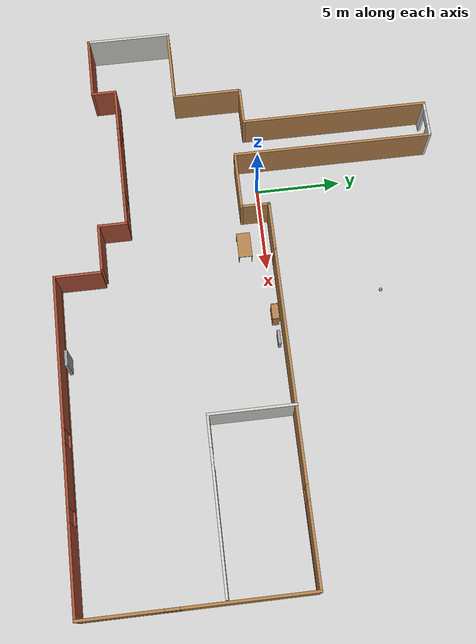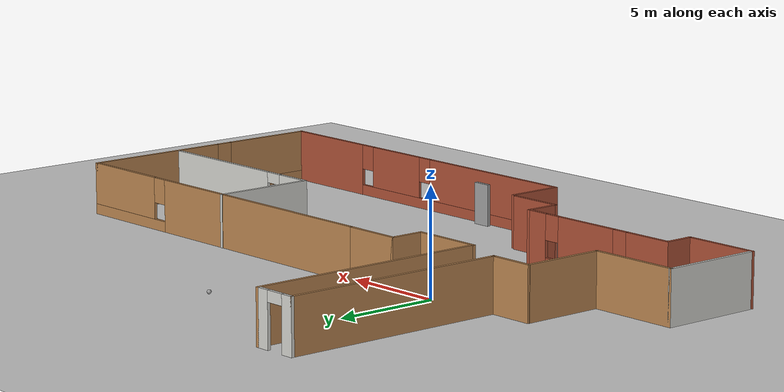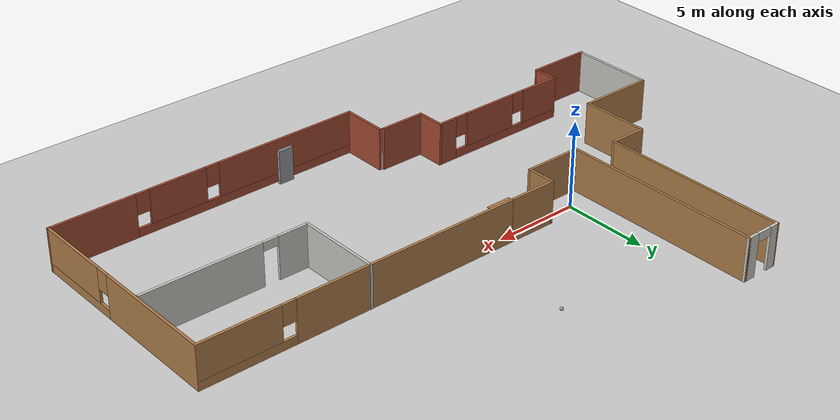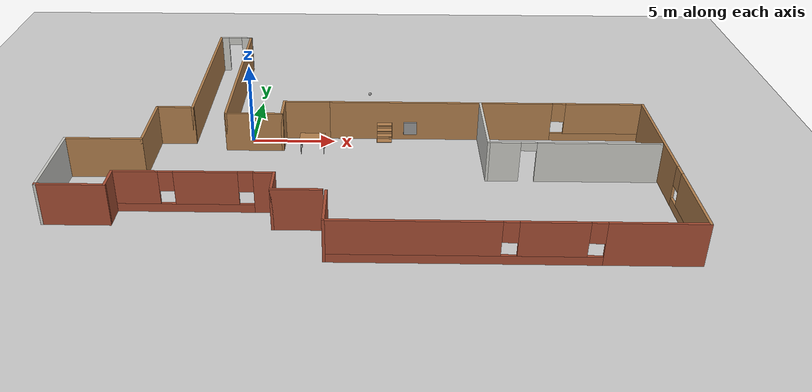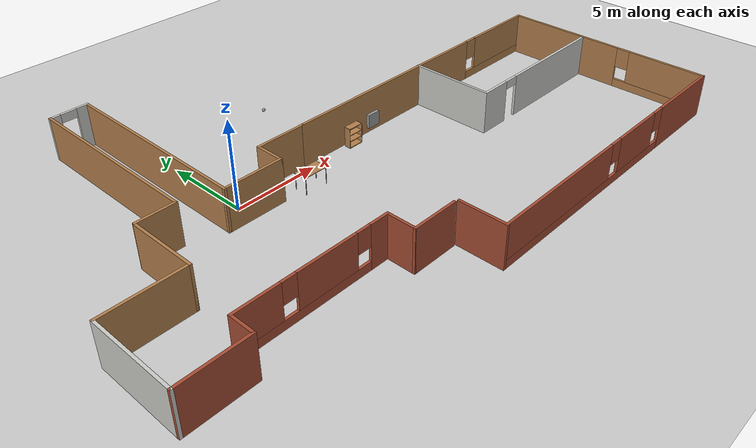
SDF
<sdf version="1.6">
 <world name="default">
  <model name="ground_plane">
   <static>1</static>
   <link name="link">
    <collision name="collision">
     <geometry><plane><normal>0 0 1</normal><size>100 100</size></plane></geometry>
     <surface><friction><ode><mu>100</mu><mu2>50</mu2></ode></friction></surface>
    </collision>
    <visual name="visual">
     <cast_shadows>0</cast_shadows>
     <geometry><plane><normal>0 0 1</normal><size>100 100</size></plane></geometry>
     <material>
      <script><uri>file://media/materials/scripts/gazebo.material</uri><name>Gazebo/Grey</name></script>
     </material>
    </visual>
   </link>
  </model>
  <model name="Building">
   <pose>6.82492 -0.8422 0 0 -0 0</pose>
   <link name="Door_2">
    <collision name="Door_2_Collision">
     <geometry><box><size>0.9 0.17 2</size></box></geometry>
     <pose>0 0 1 0 -0 0</pose>
    </collision>
    <visual name="Door_2_Visual">
     <pose>0 0 1 0 -0 0</pose>
     <geometry><box><size>0.9 0.17 2</size></box></geometry>
     <material>
      <script><uri>file://media/materials/scripts/gazebo.material</uri><name>Gazebo/Grey</name></script>
     </material>
    </visual>
    <pose>2.85427 -10.9833 0 0 -0 0</pose>
   </link>
   <link name="Wall_22">
    <collision name="Wall_22_Collision">
     <geometry><box><size>2.75 0.15 2.5</size></box></geometry>
     <pose>0 0 1.25 0 -0 0</pose>
    </collision>
    <visual name="Wall_22_Visual">
     <pose>0 0 1.25 0 -0 0</pose>
     <geometry><box><size>2.75 0.15 2.5</size></box></geometry>
     <material>
      <script><uri>file://media/materials/scripts/gazebo.material</uri><name>Gazebo/Bricks</name></script>
      <ambient>1 1 1 1</ambient>
     </material>
     <meta><layer>0</layer></meta>
    </visual>
    <pose>-3.31689 -8.59353 0 0 -0 0</pose>
   </link>
   <link name="Wall_24">
    <collision name="Wall_24_Collision">
     <geometry><box><size>1.75 0.15 2.5</size></box></geometry>
     <pose>0 0 1.25 0 -0 0</pose>
    </collision>
    <visual name="Wall_24_Visual">
     <pose>0 0 1.25 0 -0 0</pose>
     <geometry><box><size>1.75 0.15 2.5</size></box></geometry>
     <material>
      <script><uri>file://media/materials/scripts/gazebo.material</uri><name>Gazebo/Bricks</name></script>
      <ambient>1 1 1 1</ambient>
     </material>
     <meta><layer>0</layer></meta>
    </visual>
    <pose>-4.61688 -7.79353 0 0 -0 1.5708</pose>
   </link>
   <link name="Wall_25">
    <pose>-8.91689 -6.99353 0 0 -0 3.14159</pose>
    <visual name="Wall_25_Visual_0">
     <pose>-3.77887 0 1.25 0 -0 0</pose>
     <geometry><box><size>1.19226 0.15 2.5</size></box></geometry>
     <material>
      <script><uri>file://media/materials/scripts/gazebo.material</uri><name>Gazebo/Bricks</name></script>
      <ambient>1 1 1 1</ambient>
     </material>
     <meta><layer>0</layer></meta>
    </visual>
    <collision name="Wall_25_Collision_0">
     <geometry><box><size>1.19226 0.15 2.5</size></box></geometry>
     <pose>-3.77887 0 1.25 0 -0 0</pose>
    </collision>
    <visual name="Wall_25_Visual_1">
     <pose>0.596132 0 0.25 0 -0 0</pose>
     <geometry><box><size>7.55774 0.15 0.5</size></box></geometry>
     <material>
      <script><uri>file://media/materials/scripts/gazebo.material</uri><name>Gazebo/Bricks</name></script>
      <ambient>1 1 1 1</ambient>
     </material>
     <meta><layer>0</layer></meta>
    </visual>
    <collision name="Wall_25_Collision_1">
     <geometry><box><size>7.55774 0.15 0.5</size></box></geometry>
     <pose>0.596132 0 0.25 0 -0 0</pose>
    </collision>
    <visual name="Wall_25_Visual_2">
     <pose>-0.669386 0 1.5 0 -0 0</pose>
     <geometry><box><size>3.4267 0.15 2</size></box></geometry>
     <material>
      <script><uri>file://media/materials/scripts/gazebo.material</uri><name>Gazebo/Bricks</name></script>
      <ambient>1 1 1 1</ambient>
     </material>
     <meta><layer>0</layer></meta>
    </visual>
    <collision name="Wall_25_Collision_2">
     <geometry><box><size>3.4267 0.15 2</size></box></geometry>
     <pose>-0.669386 0 1.5 0 -0 0</pose>
    </collision>
    <visual name="Wall_25_Visual_3">
     <pose>3.10948 0 1.5 0 -0 0</pose>
     <geometry><box><size>2.53104 0.15 2</size></box></geometry>
     <material>
      <script><uri>file://media/materials/scripts/gazebo.material</uri><name>Gazebo/Bricks</name></script>
      <ambient>1 1 1 1</ambient>
     </material>
     <meta><layer>0</layer></meta>
    </visual>
    <collision name="Wall_25_Collision_3">
     <geometry><box><size>2.53104 0.15 2</size></box></geometry>
     <pose>3.10948 0 1.5 0 -0 0</pose>
    </collision>
    <visual name="Wall_25_Visual_4">
     <pose>-2.78274 0 1.9 0 -0 0</pose>
     <geometry><box><size>0.8 0.15 1.2</size></box></geometry>
     <material>
      <script><uri>file://media/materials/scripts/gazebo.material</uri><name>Gazebo/Bricks</name></script>
      <ambient>1 1 1 1</ambient>
     </material>
     <meta><layer>0</layer></meta>
    </visual>
    <collision name="Wall_25_Collision_4">
     <geometry><box><size>0.8 0.15 1.2</size></box></geometry>
     <pose>-2.78274 0 1.9 0 -0 0</pose>
    </collision>
    <visual name="Wall_25_Visual_5">
     <pose>1.44396 0 1.9 0 -0 0</pose>
     <geometry><box><size>0.8 0.15 1.2</size></box></geometry>
     <material>
      <script><uri>file://media/materials/scripts/gazebo.material</uri><name>Gazebo/Bricks</name></script>
      <ambient>1 1 1 1</ambient>
     </material>
     <meta><layer>0</layer></meta>
    </visual>
    <collision name="Wall_25_Collision_5">
     <geometry><box><size>0.8 0.15 1.2</size></box></geometry>
     <pose>1.44396 0 1.9 0 -0 0</pose>
    </collision>
   </link>
   <link name="Wall_26">
    <collision name="Wall_26_Collision">
     <geometry><box><size>1.5 0.15 2.5</size></box></geometry>
     <pose>0 0 1.25 0 -0 0</pose>
    </collision>
    <visual name="Wall_26_Visual">
     <pose>0 0 1.25 0 -0 0</pose>
     <geometry><box><size>1.5 0.15 2.5</size></box></geometry>
     <material>
      <script><uri>file://media/materials/scripts/gazebo.material</uri><name>Gazebo/Bricks</name></script>
      <ambient>1 1 1 1</ambient>
     </material>
     <meta><layer>0</layer></meta>
    </visual>
    <pose>-13.2169 -7.66853 0 0 0 -1.5708</pose>
   </link>
   <link name="Wall_27">
    <collision name="Wall_27_Collision">
     <geometry><box><size>3.75 0.15 2.5</size></box></geometry>
     <pose>0 0 1.25 0 -0 0</pose>
    </collision>
    <visual name="Wall_27_Visual">
     <pose>0 0 1.25 0 -0 0</pose>
     <geometry><box><size>3.75 0.15 2.5</size></box></geometry>
     <material>
      <script><uri>file://media/materials/scripts/gazebo.material</uri><name>Gazebo/Bricks</name></script>
      <ambient>1 1 1 1</ambient>
     </material>
     <meta><layer>0</layer></meta>
    </visual>
    <pose>-15.0169 -8.34353 0 0 -0 3.14159</pose>
   </link>
   <link name="Wall_28">
    <collision name="Wall_28_Collision">
     <geometry><box><size>5 0.15 2.5</size></box></geometry>
     <pose>0 0 1.25 0 -0 0</pose>
    </collision>
    <visual name="Wall_28_Visual">
     <pose>0 0 1.25 0 -0 0</pose>
     <geometry><box><size>5 0.15 2.5</size></box></geometry>
     <material>
      <script><uri>file://media/materials/scripts/gazebo.material</uri><name>Gazebo/CeilingTiled</name></script>
      <ambient>1 1 1 1</ambient>
     </material>
     <meta><layer>0</layer></meta>
    </visual>
    <pose>-16.8169 -5.91853 0 0 -0 1.5708</pose>
   </link>
   <link name="Wall_29">
    <collision name="Wall_29_Collision">
     <geometry><box><size>4.5 0.15 2.5</size></box></geometry>
     <pose>0 0 1.25 0 -0 0</pose>
    </collision>
    <visual name="Wall_29_Visual">
     <pose>0 0 1.25 0 -0 0</pose>
     <geometry><box><size>4.5 0.15 2.5</size></box></geometry>
     <material>
      <script><uri>file://media/materials/scripts/gazebo.material</uri><name>Gazebo/Wood</name></script>
      <ambient>1 1 1 1</ambient>
     </material>
     <meta><layer>0</layer></meta>
    </visual>
    <pose>-14.6419 -3.49353 0 0 -0 0</pose>
   </link>
   <link name="Wall_30">
    <collision name="Wall_30_Collision">
     <geometry><box><size>4 0.15 2.5</size></box></geometry>
     <pose>0 0 1.25 0 -0 0</pose>
    </collision>
    <visual name="Wall_30_Visual">
     <pose>0 0 1.25 0 -0 0</pose>
     <geometry><box><size>4 0.15 2.5</size></box></geometry>
     <material>
      <script><uri>file://media/materials/scripts/gazebo.material</uri><name>Gazebo/Wood</name></script>
      <ambient>1 1 1 1</ambient>
     </material>
     <meta><layer>0</layer></meta>
    </visual>
    <pose>-12.4669 -1.56853 0 0 -0 1.5708</pose>
   </link>
   <link name="Wall_33">
    <collision name="Wall_33_Collision">
     <geometry><box><size>11.75 0.15 2.5</size></box></geometry>
     <pose>0 0 1.25 0 -0 0</pose>
    </collision>
    <visual name="Wall_33_Visual">
     <pose>0 0 1.25 0 -0 0</pose>
     <geometry><box><size>11.75 0.15 2.5</size></box></geometry>
     <material>
      <script><uri>file://media/materials/scripts/gazebo.material</uri><name>Gazebo/Wood</name></script>
      <ambient>1 1 1 1</ambient>
     </material>
     <meta><layer>0</layer></meta>
    </visual>
    <pose>-8.23311 5.5 0 0 -0 1.5708</pose>
   </link>
   <link name="Wall_34">
    <pose>-9.28312 11.3 0 0 -0 3.14159</pose>
    <visual name="Wall_34_Visual_0">
     <pose>-0.756908 0 1.25 0 -0 0</pose>
     <geometry><box><size>0.736185 0.15 2.5</size></box></geometry>
     <material>
      <script><uri>file://media/materials/scripts/gazebo.material</uri><name>Gazebo/CeilingTiled</name></script>
      <ambient>1 1 1 1</ambient>
     </material>
     <meta><layer>0</layer></meta>
    </visual>
    <collision name="Wall_34_Collision_0">
     <geometry><box><size>0.736185 0.15 2.5</size></box></geometry>
     <pose>-0.756908 0 1.25 0 -0 0</pose>
    </collision>
    <visual name="Wall_34_Visual_1">
     <pose>0.818092 0 1.25 0 -0 0</pose>
     <geometry><box><size>0.613815 0.15 2.5</size></box></geometry>
     <material>
      <script><uri>file://media/materials/scripts/gazebo.material</uri><name>Gazebo/CeilingTiled</name></script>
      <ambient>1 1 1 1</ambient>
     </material>
     <meta><layer>0</layer></meta>
    </visual>
    <collision name="Wall_34_Collision_1">
     <geometry><box><size>0.613815 0.15 2.5</size></box></geometry>
     <pose>0.818092 0 1.25 0 -0 0</pose>
    </collision>
    <visual name="Wall_34_Visual_2">
     <pose>0.061185 0 2.25 0 -0 0</pose>
     <geometry><box><size>0.9 0.15 0.5</size></box></geometry>
     <material>
      <script><uri>file://media/materials/scripts/gazebo.material</uri><name>Gazebo/CeilingTiled</name></script>
      <ambient>1 1 1 1</ambient>
     </material>
     <meta><layer>0</layer></meta>
    </visual>
    <collision name="Wall_34_Collision_2">
     <geometry><box><size>0.9 0.15 0.5</size></box></geometry>
     <pose>0.061185 0 2.25 0 -0 0</pose>
    </collision>
   </link>
   <link name="Wall_35">
    <collision name="Wall_35_Collision">
     <geometry><box><size>11 0.15 2.5</size></box></geometry>
     <pose>0 0 1.25 0 -0 0</pose>
    </collision>
    <visual name="Wall_35_Visual">
     <pose>0 0 1.25 0 -0 0</pose>
     <geometry><box><size>11 0.15 2.5</size></box></geometry>
     <material>
      <script><uri>file://media/materials/scripts/gazebo.material</uri><name>Gazebo/Wood</name></script>
      <ambient>1 1 1 1</ambient>
     </material>
     <meta><layer>0</layer></meta>
    </visual>
    <pose>-10.3331 5.875 0 0 0 -1.5708</pose>
   </link>
   <link name="Wall_36">
    <collision name="Wall_36_Collision">
     <geometry><box><size>2.25 0.15 2.5</size></box></geometry>
     <pose>0 0 1.25 0 -0 0</pose>
    </collision>
    <visual name="Wall_36_Visual">
     <pose>0 0 1.25 0 -0 0</pose>
     <geometry><box><size>2.25 0.15 2.5</size></box></geometry>
     <material>
      <script><uri>file://media/materials/scripts/gazebo.material</uri><name>Gazebo/Wood</name></script>
      <ambient>1 1 1 1</ambient>
     </material>
     <meta><layer>0</layer></meta>
    </visual>
    <pose>-11.3831 0.45 0 0 -0 3.14159</pose>
   </link>
   <link name="Wall_41">
    <pose>7.39189 1.3 0 0 -0 0</pose>
    <visual name="Wall_41_Visual_0">
     <pose>-2.75135 0 1.25 0 -0 0</pose>
     <geometry><box><size>13.4973 0.15 2.5</size></box></geometry>
     <material>
      <script><uri>file://media/materials/scripts/gazebo.material</uri><name>Gazebo/Wood</name></script>
      <ambient>1 1 1 1</ambient>
     </material>
     <meta><layer>0</layer></meta>
    </visual>
    <collision name="Wall_41_Collision_0">
     <geometry><box><size>13.4973 0.15 2.5</size></box></geometry>
     <pose>-2.75135 0 1.25 0 -0 0</pose>
    </collision>
    <visual name="Wall_41_Visual_1">
     <pose>6.74865 0 0.25 0 -0 0</pose>
     <geometry><box><size>5.5027 0.15 0.5</size></box></geometry>
     <material>
      <script><uri>file://media/materials/scripts/gazebo.material</uri><name>Gazebo/Wood</name></script>
      <ambient>1 1 1 1</ambient>
     </material>
     <meta><layer>0</layer></meta>
    </visual>
    <collision name="Wall_41_Collision_1">
     <geometry><box><size>5.5027 0.15 0.5</size></box></geometry>
     <pose>6.74865 0 0.25 0 -0 0</pose>
    </collision>
    <visual name="Wall_41_Visual_2">
     <pose>7.14865 0 1.5 0 -0 0</pose>
     <geometry><box><size>4.7027 0.15 2</size></box></geometry>
     <material>
      <script><uri>file://media/materials/scripts/gazebo.material</uri><name>Gazebo/Wood</name></script>
      <ambient>1 1 1 1</ambient>
     </material>
     <meta><layer>0</layer></meta>
    </visual>
    <collision name="Wall_41_Collision_2">
     <geometry><box><size>4.7027 0.15 2</size></box></geometry>
     <pose>7.14865 0 1.5 0 -0 0</pose>
    </collision>
    <visual name="Wall_41_Visual_3">
     <pose>4.3973 0 1.9 0 -0 0</pose>
     <geometry><box><size>0.8 0.15 1.2</size></box></geometry>
     <material>
      <script><uri>file://media/materials/scripts/gazebo.material</uri><name>Gazebo/Wood</name></script>
      <ambient>1 1 1 1</ambient>
     </material>
     <meta><layer>0</layer></meta>
    </visual>
    <collision name="Wall_41_Collision_3">
     <geometry><box><size>0.8 0.15 1.2</size></box></geometry>
     <pose>4.3973 0 1.9 0 -0 0</pose>
    </collision>
   </link>
   <link name="Wall_42">
    <pose>16.8169 -5 0 0 0 -1.5708</pose>
    <visual name="Wall_42_Visual_0">
     <pose>-2.72318 0 1.25 0 -0 0</pose>
     <geometry><box><size>7.30363 0.15 2.5</size></box></geometry>
     <material>
      <script><uri>file://media/materials/scripts/gazebo.material</uri><name>Gazebo/Wood</name></script>
      <ambient>1 1 1 1</ambient>
     </material>
     <meta><layer>0</layer></meta>
    </visual>
    <collision name="Wall_42_Collision_0">
     <geometry><box><size>7.30363 0.15 2.5</size></box></geometry>
     <pose>-2.72318 0 1.25 0 -0 0</pose>
    </collision>
    <visual name="Wall_42_Visual_1">
     <pose>3.65182 0 0.25 0 -0 0</pose>
     <geometry><box><size>5.44637 0.15 0.5</size></box></geometry>
     <material>
      <script><uri>file://media/materials/scripts/gazebo.material</uri><name>Gazebo/Wood</name></script>
      <ambient>1 1 1 1</ambient>
     </material>
     <meta><layer>0</layer></meta>
    </visual>
    <collision name="Wall_42_Collision_1">
     <geometry><box><size>5.44637 0.15 0.5</size></box></geometry>
     <pose>3.65182 0 0.25 0 -0 0</pose>
    </collision>
    <visual name="Wall_42_Visual_2">
     <pose>4.05182 0 1.5 0 -0 0</pose>
     <geometry><box><size>4.64637 0.15 2</size></box></geometry>
     <material>
      <script><uri>file://media/materials/scripts/gazebo.material</uri><name>Gazebo/Wood</name></script>
      <ambient>1 1 1 1</ambient>
     </material>
     <meta><layer>0</layer></meta>
    </visual>
    <collision name="Wall_42_Collision_2">
     <geometry><box><size>4.64637 0.15 2</size></box></geometry>
     <pose>4.05182 0 1.5 0 -0 0</pose>
    </collision>
    <visual name="Wall_42_Visual_3">
     <pose>1.32863 0 1.9 0 -0 0</pose>
     <geometry><box><size>0.8 0.15 1.2</size></box></geometry>
     <material>
      <script><uri>file://media/materials/scripts/gazebo.material</uri><name>Gazebo/Wood</name></script>
      <ambient>1 1 1 1</ambient>
     </material>
     <meta><layer>0</layer></meta>
    </visual>
    <collision name="Wall_42_Collision_3">
     <geometry><box><size>0.8 0.15 1.2</size></box></geometry>
     <pose>1.32863 0 1.9 0 -0 0</pose>
    </collision>
   </link>
   <link name="Wall_43">
    <pose>7.51689 -11.3 0 0 -0 3.14159</pose>
    <visual name="Wall_43_Visual_0">
     <pose>-6.8899 0 1.25 0 -0 0</pose>
     <geometry><box><size>4.97021 0.15 2.5</size></box></geometry>
     <material>
      <script><uri>file://media/materials/scripts/gazebo.material</uri><name>Gazebo/Bricks</name></script>
      <ambient>1 1 1 1</ambient>
     </material>
     <meta><layer>0</layer></meta>
    </visual>
    <collision name="Wall_43_Collision_0">
     <geometry><box><size>4.97021 0.15 2.5</size></box></geometry>
     <pose>-6.8899 0 1.25 0 -0 0</pose>
    </collision>
    <visual name="Wall_43_Visual_1">
     <pose>2.4851 0 0.25 0 -0 0</pose>
     <geometry><box><size>13.7798 0.15 0.5</size></box></geometry>
     <material>
      <script><uri>file://media/materials/scripts/gazebo.material</uri><name>Gazebo/Bricks</name></script>
      <ambient>1 1 1 1</ambient>
     </material>
     <meta><layer>0</layer></meta>
    </visual>
    <collision name="Wall_43_Collision_1">
     <geometry><box><size>13.7798 0.15 0.5</size></box></geometry>
     <pose>2.4851 0 0.25 0 -0 0</pose>
    </collision>
    <visual name="Wall_43_Visual_2">
     <pose>-1.89144 0 1.5 0 -0 0</pose>
     <geometry><box><size>3.4267 0.15 2</size></box></geometry>
     <material>
      <script><uri>file://media/materials/scripts/gazebo.material</uri><name>Gazebo/Bricks</name></script>
      <ambient>1 1 1 1</ambient>
     </material>
     <meta><layer>0</layer></meta>
    </visual>
    <collision name="Wall_43_Collision_2">
     <geometry><box><size>3.4267 0.15 2</size></box></geometry>
     <pose>-1.89144 0 1.5 0 -0 0</pose>
    </collision>
    <visual name="Wall_43_Visual_3">
     <pose>4.99845 0 1.5 0 -0 0</pose>
     <geometry><box><size>8.75309 0.15 2</size></box></geometry>
     <material>
      <script><uri>file://media/materials/scripts/gazebo.material</uri><name>Gazebo/Bricks</name></script>
      <ambient>1 1 1 1</ambient>
     </material>
     <meta><layer>0</layer></meta>
    </visual>
    <collision name="Wall_43_Collision_3">
     <geometry><box><size>8.75309 0.15 2</size></box></geometry>
     <pose>4.99845 0 1.5 0 -0 0</pose>
    </collision>
    <visual name="Wall_43_Visual_4">
     <pose>-4.00479 0 1.9 0 -0 0</pose>
     <geometry><box><size>0.8 0.15 1.2</size></box></geometry>
     <material>
      <script><uri>file://media/materials/scripts/gazebo.material</uri><name>Gazebo/Bricks</name></script>
      <ambient>1 1 1 1</ambient>
     </material>
     <meta><layer>0</layer></meta>
    </visual>
    <collision name="Wall_43_Collision_4">
     <geometry><box><size>0.8 0.15 1.2</size></box></geometry>
     <pose>-4.00479 0 1.9 0 -0 0</pose>
    </collision>
    <visual name="Wall_43_Visual_5">
     <pose>0.221907 0 1.9 0 -0 0</pose>
     <geometry><box><size>0.8 0.15 1.2</size></box></geometry>
     <material>
      <script><uri>file://media/materials/scripts/gazebo.material</uri><name>Gazebo/Bricks</name></script>
      <ambient>1 1 1 1</ambient>
     </material>
     <meta><layer>0</layer></meta>
    </visual>
    <collision name="Wall_43_Collision_5">
     <geometry><box><size>0.8 0.15 1.2</size></box></geometry>
     <pose>0.221907 0 1.9 0 -0 0</pose>
    </collision>
   </link>
   <link name="Wall_44">
    <collision name="Wall_44_Collision">
     <geometry><box><size>2.75 0.15 2.5</size></box></geometry>
     <pose>0 0 1.25 0 -0 0</pose>
    </collision>
    <visual name="Wall_44_Visual">
     <pose>0 0 1.25 0 -0 0</pose>
     <geometry><box><size>2.75 0.15 2.5</size></box></geometry>
     <material>
      <script><uri>file://media/materials/scripts/gazebo.material</uri><name>Gazebo/Bricks</name></script>
      <ambient>1 1 1 1</ambient>
     </material>
     <meta><layer>0</layer></meta>
    </visual>
    <pose>-1.78312 -10 0 0 -0 1.5708</pose>
   </link>
   <link name="Wall_46">
    <collision name="Wall_46_Collision">
     <geometry><box><size>5 0.15 2.5</size></box></geometry>
     <pose>0 0 1.25 0 -0 0</pose>
    </collision>
    <visual name="Wall_46_Visual">
     <pose>0 0 1.25 0 -0 0</pose>
     <geometry><box><size>5 0.15 2.5</size></box></geometry>
     <material>
      <script><uri>file://media/materials/scripts/gazebo.material</uri><name>Gazebo/CeilingTiled</name></script>
      <ambient>1 1 1 1</ambient>
     </material>
     <meta><layer>0</layer></meta>
    </visual>
    <pose>7.02747 -1.10277 0 0 0 -1.5708</pose>
   </link>
   <link name="Wall_47">
    <pose>11.8275 -3.52777 0 0 -0 0</pose>
    <visual name="Wall_47_Visual_0">
     <pose>-3.93895 0 1.25 0 -0 0</pose>
     <geometry><box><size>1.8721 0.15 2.5</size></box></geometry>
     <material>
      <script><uri>file://media/materials/scripts/gazebo.material</uri><name>Gazebo/CeilingTiled</name></script>
      <ambient>1 1 1 1</ambient>
     </material>
     <meta><layer>0</layer></meta>
    </visual>
    <collision name="Wall_47_Collision_0">
     <geometry><box><size>1.8721 0.15 2.5</size></box></geometry>
     <pose>-3.93895 0 1.25 0 -0 0</pose>
    </collision>
    <visual name="Wall_47_Visual_1">
     <pose>1.38605 0 1.25 0 -0 0</pose>
     <geometry><box><size>6.9779 0.15 2.5</size></box></geometry>
     <material>
      <script><uri>file://media/materials/scripts/gazebo.material</uri><name>Gazebo/CeilingTiled</name></script>
      <ambient>1 1 1 1</ambient>
     </material>
     <meta><layer>0</layer></meta>
    </visual>
    <collision name="Wall_47_Collision_1">
     <geometry><box><size>6.9779 0.15 2.5</size></box></geometry>
     <pose>1.38605 0 1.25 0 -0 0</pose>
    </collision>
    <visual name="Wall_47_Visual_2">
     <pose>-2.55289 0 2.25 0 -0 0</pose>
     <geometry><box><size>0.9 0.15 0.5</size></box></geometry>
     <material>
      <script><uri>file://media/materials/scripts/gazebo.material</uri><name>Gazebo/CeilingTiled</name></script>
      <ambient>1 1 1 1</ambient>
     </material>
     <meta><layer>0</layer></meta>
    </visual>
    <collision name="Wall_47_Collision_2">
     <geometry><box><size>0.9 0.15 0.5</size></box></geometry>
     <pose>-2.55289 0 2.25 0 -0 0</pose>
    </collision>
   </link>
   <link name="Wall_5">
    <collision name="Wall_5_Collision">
     <geometry><box><size>3.5 0.15 2.5</size></box></geometry>
     <pose>0 0 1.25 0 -0 0</pose>
    </collision>
    <visual name="Wall_5_Visual">
     <pose>0 0 1.25 0 -0 0</pose>
     <geometry><box><size>3.5 0.15 2.5</size></box></geometry>
     <material>
      <script><uri>file://media/materials/scripts/gazebo.material</uri><name>Gazebo/Wood</name></script>
      <ambient>1 1 1 1</ambient>
     </material>
     <meta><layer>0</layer></meta>
    </visual>
    <pose>-6.55811 -0.3 0 0 -0 0</pose>
   </link>
   <link name="Wall_6">
    <collision name="Wall_6_Collision">
     <geometry><box><size>1.75 0.15 2.5</size></box></geometry>
     <pose>0 0 1.25 0 -0 0</pose>
    </collision>
    <visual name="Wall_6_Visual">
     <pose>0 0 1.25 0 -0 0</pose>
     <geometry><box><size>1.75 0.15 2.5</size></box></geometry>
     <material>
      <script><uri>file://media/materials/scripts/gazebo.material</uri><name>Gazebo/Wood</name></script>
      <ambient>1 1 1 1</ambient>
     </material>
     <meta><layer>0</layer></meta>
    </visual>
    <pose>-4.88312 0.5 0 0 -0 1.5708</pose>
   </link>
   <link name="Wall_7">
    <collision name="Wall_7_Collision">
     <geometry><box><size>3 0.15 2.5</size></box></geometry>
     <pose>0 0 1.25 0 -0 0</pose>
    </collision>
    <visual name="Wall_7_Visual">
     <pose>0 0 1.25 0 -0 0</pose>
     <geometry><box><size>3 0.15 2.5</size></box></geometry>
     <material>
      <script><uri>file://media/materials/scripts/gazebo.material</uri><name>Gazebo/Wood</name></script>
      <ambient>1 1 1 1</ambient>
     </material>
     <meta><layer>0</layer></meta>
    </visual>
    <pose>-3.45811 1.3 0 0 -0 0</pose>
   </link>
   <link name="Window_6">
    <collision name="Window_6_Collision">
     <geometry><box><size>0.8 0.17 0.8</size></box></geometry>
     <pose>0 0 0.4 0 -0 0</pose>
    </collision>
    <visual name="Window_6_Visual">
     <pose>0 0 0.4 0 -0 0</pose>
     <geometry><box><size>0.8 0.17 0.8</size></box></geometry>
     <material>
      <script><uri>file://media/materials/scripts/gazebo.material</uri><name>Gazebo/Grey</name></script>
     </material>
    </visual>
    <pose>2.80077 0.947709 0.5 0 -0 0</pose>
   </link>
   <static>1</static>
  </model>
  <model name="bookshelf">
   <static>1</static>
   <link name="link">
    <inertial><mass>1</mass></inertial>
    <collision name="back">
     <pose>0 0.005 0.6 0 -0 0</pose>
     <geometry><box><size>0.9 0.01 1.2</size></box></geometry>
    </collision>
    <visual name="visual1">
     <pose>0 0.005 0.6 0 -0 0</pose>
     <geometry><box><size>0.9 0.01 1.2</size></box></geometry>
     <material>
      <script><uri>file://media/materials/scripts/gazebo.material</uri><name>Gazebo/Wood</name></script>
     </material>
    </visual>
    <collision name="left_side">
     <pose>0.45 -0.195 0.6 0 -0 0</pose>
     <geometry><box><size>0.02 0.4 1.2</size></box></geometry>
    </collision>
    <visual name="visual2">
     <pose>0.45 -0.195 0.6 0 -0 0</pose>
     <geometry><box><size>0.02 0.4 1.2</size></box></geometry>
     <material>
      <script><uri>file://media/materials/scripts/gazebo.material</uri><name>Gazebo/Wood</name></script>
     </material>
    </visual>
    <collision name="right_side">
     <pose>-0.45 -0.195 0.6 0 -0 0</pose>
     <geometry><box><size>0.02 0.4 1.2</size></box></geometry>
    </collision>
    <visual name="visual3">
     <pose>-0.45 -0.195 0.6 0 -0 0</pose>
     <geometry><box><size>0.02 0.4 1.2</size></box></geometry>
     <material>
      <script><uri>file://media/materials/scripts/gazebo.material</uri><name>Gazebo/Wood</name></script>
     </material>
    </visual>
    <collision name="bottom">
     <pose>0 -0.195 0.03 0 -0 0</pose>
     <geometry><box><size>0.88 0.4 0.06</size></box></geometry>
    </collision>
    <visual name="visual4">
     <pose>0 -0.195 0.03 0 -0 0</pose>
     <geometry><box><size>0.88 0.4 0.06</size></box></geometry>
     <material>
      <script><uri>file://media/materials/scripts/gazebo.material</uri><name>Gazebo/Wood</name></script>
     </material>
    </visual>
    <collision name="top">
     <pose>0 -0.195 1.19 0 -0 0</pose>
     <geometry><box><size>0.88 0.4 0.02</size></box></geometry>
    </collision>
    <visual name="visual5">
     <pose>0 -0.195 1.19 0 -0 0</pose>
     <geometry><box><size>0.88 0.4 0.02</size></box></geometry>
     <material>
      <script><uri>file://media/materials/scripts/gazebo.material</uri><name>Gazebo/Wood</name></script>
     </material>
    </visual>
    <collision name="low_shelf">
     <pose>0 -0.195 0.43 0 -0 0</pose>
     <geometry><box><size>0.88 0.4 0.02</size></box></geometry>
    </collision>
    <visual name="visual6">
     <pose>0 -0.195 0.43 0 -0 0</pose>
     <geometry><box><size>0.88 0.4 0.02</size></box></geometry>
     <material>
      <script><uri>file://media/materials/scripts/gazebo.material</uri><name>Gazebo/Wood</name></script>
     </material>
    </visual>
    <collision name="high_shelf">
     <pose>0 -0.195 0.8 0 -0 0</pose>
     <geometry><box><size>0.88 0.4 0.02</size></box></geometry>
    </collision>
    <visual name="visual7">
     <pose>0 -0.195 0.8 0 -0 0</pose>
     <geometry><box><size>0.88 0.4 0.02</size></box></geometry>
     <material>
      <script><uri>file://media/materials/scripts/gazebo.material</uri><name>Gazebo/Wood</name></script>
     </material>
    </visual>
   </link>
   <pose>8.05913 0.271702 0 0 -0 0</pose>
  </model>
  <model name="table_1">
   <static>1</static>
   <link name="link">
    <collision name="surface">
     <pose>0 0 1 0 -0 0</pose>
     <geometry><box><size>1.5 0.8 0.03</size></box></geometry>
     <surface><friction><ode><mu>0.6</mu><mu2>0.6</mu2></ode></friction></surface>
    </collision>
    <visual name="visual1">
     <pose>0 0 1 0 -0 0</pose>
     <geometry><box><size>1.5 0.8 0.03</size></box></geometry>
     <material>
      <script><uri>file://media/materials/scripts/gazebo.material</uri><name>Gazebo/Wood</name></script>
     </material>
    </visual>
    <collision name="front_left_leg">
     <pose>0.68 0.38 0.5 0 -0 0</pose>
     <geometry><cylinder><radius>0.02</radius><length>1</length></cylinder></geometry>
    </collision>
    <visual name="front_left_leg">
     <pose>0.68 0.38 0.5 0 -0 0</pose>
     <geometry><cylinder><radius>0.02</radius><length>1</length></cylinder></geometry>
     <material>
      <script><uri>file://media/materials/scripts/gazebo.material</uri><name>Gazebo/Grey</name></script>
     </material>
    </visual>
    <collision name="front_right_leg">
     <pose>0.68 -0.38 0.5 0 -0 0</pose>
     <geometry><cylinder><radius>0.02</radius><length>1</length></cylinder></geometry>
    </collision>
    <visual name="front_right_leg">
     <pose>0.68 -0.38 0.5 0 -0 0</pose>
     <geometry><cylinder><radius>0.02</radius><length>1</length></cylinder></geometry>
     <material>
      <script><uri>file://media/materials/scripts/gazebo.material</uri><name>Gazebo/Grey</name></script>
     </material>
    </visual>
    <collision name="back_right_leg">
     <pose>-0.68 -0.38 0.5 0 -0 0</pose>
     <geometry><cylinder><radius>0.02</radius><length>1</length></cylinder></geometry>
    </collision>
    <visual name="back_right_leg">
     <pose>-0.68 -0.38 0.5 0 -0 0</pose>
     <geometry><cylinder><radius>0.02</radius><length>1</length></cylinder></geometry>
     <material>
      <script><uri>file://media/materials/scripts/gazebo.material</uri><name>Gazebo/Grey</name></script>
     </material>
    </visual>
    <collision name="back_left_leg">
     <pose>-0.68 0.38 0.5 0 -0 0</pose>
     <geometry><cylinder><radius>0.02</radius><length>1</length></cylinder></geometry>
    </collision>
    <visual name="back_left_leg">
     <pose>-0.68 0.38 0.5 0 -0 0</pose>
     <geometry><cylinder><radius>0.02</radius><length>1</length></cylinder></geometry>
     <material>
      <script><uri>file://media/materials/scripts/gazebo.material</uri><name>Gazebo/Grey</name></script>
     </material>
    </visual>
   </link>
   <pose>3.73784 -1.19551 0 0 -0 0</pose>
  </model>
  <model name="my_ball">
   <link name="link">
    <inertial>
     <mass>1</mass>
     <inertia><ixx>0.1</ixx><ixy>0</ixy><ixz>0</ixz><iyy>0.1</iyy><iyz>0</iyz><izz>0.1</izz></inertia>
    </inertial>
    <visual name="visual">
     <geometry><sphere><radius>0.1</radius></sphere></geometry>
     <material>
      <script><name>Gazebo/Grey</name><uri>file://media/materials/scripts/gazebo.material</uri></script>
      <shader type="vertex"><normal_map>__default__</normal_map></shader>
      <ambient>1 1 1 1</ambient>
      <diffuse>1 1 1 1</diffuse>
      <specular>1 1 1 1</specular>
      <emissive>1 1 1 1</emissive>
     </material>
    </visual>
    <collision name="collision">
     <geometry><sphere><radius>0.1</radius></sphere></geometry>
     <surface>
      <friction>
       <ode><mu>1</mu><mu2>1</mu2><fdir1>0 0 0</fdir1><slip1>0</slip1><slip2>0</slip2></ode>
       <torsional>
        <coefficient>1</coefficient>
        <patch_radius>0</patch_radius>
        <surface_radius>0</surface_radius>
        <use_patch_radius>1</use_patch_radius>
        <ode><slip>0</slip></ode>
       </torsional>
      </friction>
      <bounce><restitution_coefficient>0</restitution_coefficient><threshold>1e+06</threshold></bounce>
      <contact>
       <collide_without_contact>0</collide_without_contact>
       <collide_without_contact_bitmask>1</collide_without_contact_bitmask>
       <collide_bitmask>1</collide_bitmask>
       <ode>
        <soft_cfm>0</soft_cfm>
        <soft_erp>0.2</soft_erp>
        <kp>1e+13</kp>
        <kd>1</kd>
        <max_vel>0.01</max_vel>
        <min_depth>0</min_depth>
       </ode>
       <bullet>
        <split_impulse>1</split_impulse>
        <split_impulse_penetration_threshold>-0.01</split_impulse_penetration_threshold>
        <soft_cfm>0</soft_cfm>
        <soft_erp>0.2</soft_erp>
        <kp>1e+13</kp>
        <kd>1</kd>
       </bullet>
      </contact>
     </surface>
    </collision>
   </link>
   <static>0</static>
   <pose>7.09874 6.45539 0.1 0 -0 0</pose>
  </model>
 </world>
</sdf>
